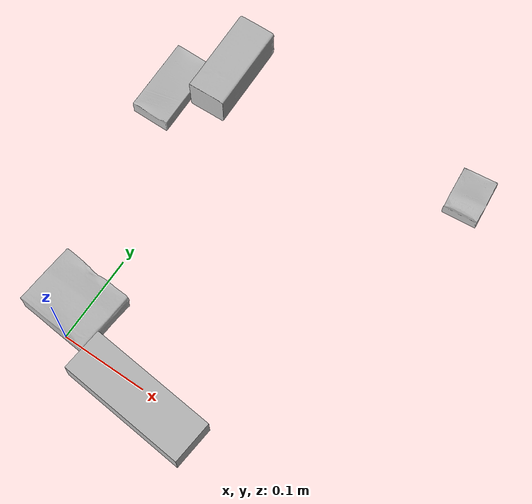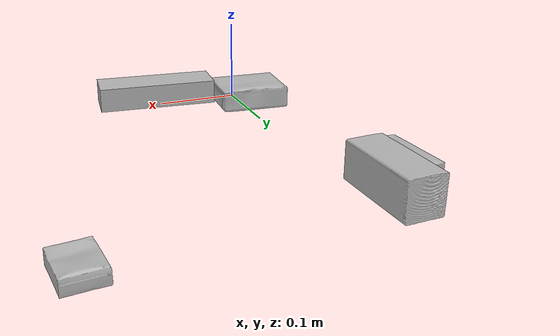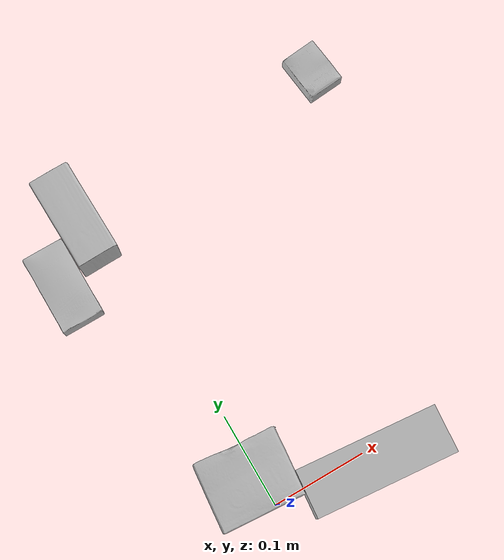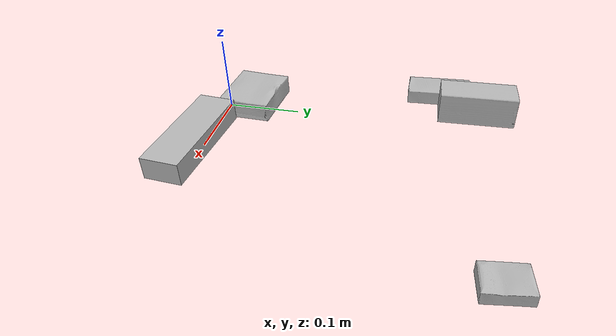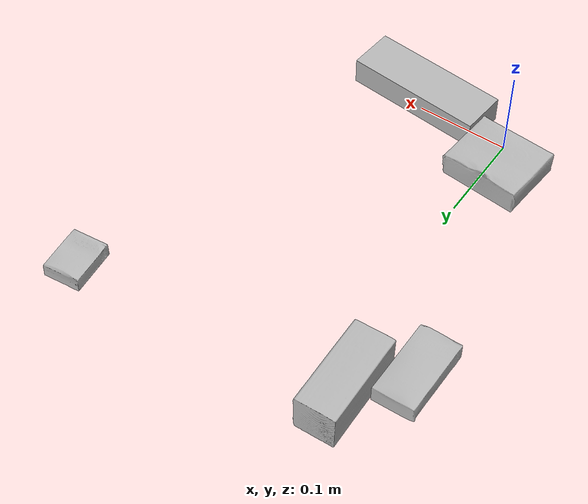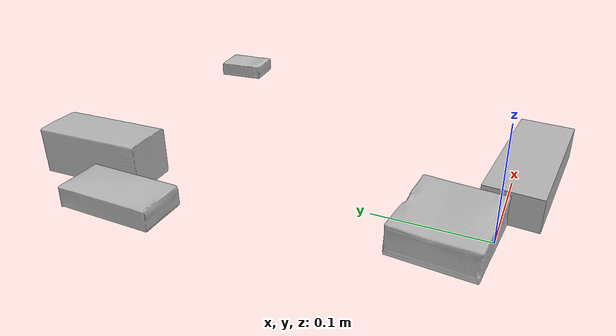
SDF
<sdf version="1.4">
  <world name="default">
    <light name="light1" type="point">
      <pose>0 0 1 0 0 0</pose>
      <diffuse>3 3 3 1</diffuse>
      <specular>3 3 3 1</specular>
    </light>
    <light name="light2" type="point">
      <pose>0 0.5 2 0 0 0</pose>
      <diffuse>1 1 1 1</diffuse>
      <specular>1 1 1 1</specular>
    </light>
    <light name="light3" type="point">
      <pose>0 0.5 2 0 0 0</pose>
      <diffuse>3 3 3 1</diffuse>
      <specular>3 3 3 1</specular>
    </light>
    <scene>
      <ambient>0.7 0.7 0.7</ambient>
    </scene>
    <model name="box1">
      <link name="link_box1">
        <collision name="default">
          <geometry>
            <mesh>
              <uri>model://sugar_box/collision_meshes/collision.obj</uri>
              <scale>0.5 0.5 0.5</scale>
            </mesh>
          </geometry>
          <surface>
            <friction>
              <ode>
                <mu>0.5</mu>
                <mu2>0.5</mu2>
              </ode>
            </friction>
          <contact>
        <ode>
            <max_vel>0</max_vel>
            <min_depth>0.0001</min_depth>
            <kp>1e8</kp>
        </ode>
    </contact></surface>
        </collision>
        <visual name="default">
          <geometry>
            <mesh>
              <uri>model://sugar_box/visual_meshes/visual.dae</uri>
              <scale>0.5 0.5 0.5</scale>
            </mesh>
          </geometry>
        </visual>
        <inertial>
          <mass>0.07249404489994049</mass>
          <pose>0.0005171863012947142 1.924554817378521e-05 -0.00018182402709499002 -0.00040462618385709627 0.0010506635220579009 0.0026153790218148127</pose>
          <inertia>
            <ixx>1.5100456e-05</ixx>
            <iyy>4.8807786e-05</iyy>
            <izz>5.842874e-05</izz>
            <ixy>0</ixy>
            <ixz>0</ixz>
            <iyz>0</iyz>
          </inertia>
        </inertial>
      </link>
      <pose>-0.07627225667238235 0.2942959666252136 0.011399303562939167 0.0007747446641368748 -0.02343288093650962 1.5776288282548938</pose>
    </model>
    <model name="box2">
      <link name="link_box2">
        <collision name="default">
          <geometry>
            <mesh>
              <uri>model://cracker_box/collision_meshes/collision.obj</uri>
              <scale>0.25 0.25 0.25</scale>
            </mesh>
          </geometry>
          <surface>
            <friction>
              <ode>
                <mu>0.5</mu>
                <mu2>0.5</mu2>
              </ode>
            </friction>
          <contact>
        <ode>
            <max_vel>0</max_vel>
            <min_depth>0.0001</min_depth>
            <kp>1e8</kp>
        </ode>
    </contact></surface>
        </collision>
        <visual name="default">
          <geometry>
            <mesh>
              <uri>model://cracker_box/visual_meshes/visual.dae</uri>
              <scale>0.25 0.25 0.25</scale>
            </mesh>
          </geometry>
        </visual>
        <inertial>
          <mass>0.019660919904708862</mass>
          <pose>0.00023660410079173744 6.358561222441494e-05 -0.0004257383698131889 -0.00031620756431779875 -0.011106489600602764 0.0025467940703044144</pose>
          <inertia>
            <ixx>3.125538e-06</ixx>
            <iyy>5.1608768e-06</iyy>
            <izz>7.365045e-06</izz>
            <ixy>0</ixy>
            <ixz>0</ixz>
            <iyz>0</iyz>
          </inertia>
        </inertial>
      </link>
      <pose>0.2653570771217346 0.3712581992149353 0.009096028283238411 -0.014050977097190692 -0.005016065200932604 1.668888221626317</pose>
    </model>
    <model name="box3">
      <link name="link_box3">
        <collision name="default">
          <geometry>
            <mesh>
              <uri>model://wood_block/collision_meshes/collision.obj</uri>
              <scale>0.5 0.5 0.5</scale>
            </mesh>
          </geometry>
          <surface>
            <friction>
              <ode>
                <mu>0.5</mu>
                <mu2>0.5</mu2>
              </ode>
            </friction>
          <contact>
        <ode>
            <max_vel>0</max_vel>
            <min_depth>0.0001</min_depth>
            <kp>1e8</kp>
        </ode>
    </contact></surface>
        </collision>
        <visual name="default">
          <geometry>
            <mesh>
              <uri>model://wood_block/visual_meshes/visual.dae</uri>
              <scale>0.5 0.5 0.5</scale>
            </mesh>
          </geometry>
        </visual>
        <inertial>
          <mass>0.22331082820892334</mass>
          <pose>-2.9066577553749084e-06 -0.000285404734313488 0.00013204292918089777 -0.0522110088927385 -0.005192696049127085 -0.006861379582621758</pose>
          <inertia>
            <ixx>7.470592e-05</ixx>
            <iyy>0.00023599603</iyy>
            <izz>0.0002351133</izz>
            <ixy>0</ixy>
            <ixz>0</ixz>
            <iyz>0</iyz>
          </inertia>
        </inertial>
      </link>
      <pose>-0.03194693475961685 0.34760114550590515 0.022629262879490852 -0.005208517727978071 0.005718778698872231 1.6013878052218253</pose>
    </model>
    <model name="box4">
      <link name="link_box4">
        <collision name="default">
          <geometry>
            <mesh>
              <uri>model://jenga/collision_meshes/collision.obj</uri>
              <scale>1.0 1.0 1.0</scale>
            </mesh>
          </geometry>
          <surface>
            <friction>
              <ode>
                <mu>0.5</mu>
                <mu2>0.5</mu2>
              </ode>
            </friction>
          <contact>
        <ode>
            <max_vel>0</max_vel>
            <min_depth>0.0001</min_depth>
            <kp>1e8</kp>
        </ode>
    </contact></surface>
        </collision>
        <visual name="default">
          <geometry>
            <mesh>
              <uri>model://jenga/visual_meshes/visual.dae</uri>
              <scale>1.0 1.0 1.0</scale>
            </mesh>
          </geometry>
        </visual>
        <inertial>
          <mass>0.1217927634716034</mass>
          <pose>-2.502855807051674e-07 -0.00010250010382151231 -4.0923401684267446e-05 0.0 -7.34215461761844e-07 0.0</pose>
          <inertia>
            <ixx>3.370301e-05</ixx>
            <iyy>0.00022837071</iyy>
            <izz>0.00024380515</izz>
            <ixy>0</ixy>
            <ixz>0</ixz>
            <iyz>0</iyz>
          </inertia>
        </inertial>
      </link>
      <pose>0.1045088917016983 -0.012790324166417122 0.014999997802078724 6.518539032975286e-11 2.457115029786355e-09 3.0485949666544276</pose>
    </model>
    <model name="box5">
      <link name="link_box5">
        <collision name="default">
          <geometry>
            <mesh>
              <uri>model://gelatin_box/collision_meshes/collision.obj</uri>
              <scale>1.0 1.0 1.0</scale>
            </mesh>
          </geometry>
          <surface>
            <friction>
              <ode>
                <mu>0.5</mu>
                <mu2>0.5</mu2>
              </ode>
            </friction>
          <contact>
        <ode>
            <max_vel>0</max_vel>
            <min_depth>0.0001</min_depth>
            <kp>1e8</kp>
        </ode>
    </contact></surface>
        </collision>
        <visual name="default">
          <geometry>
            <mesh>
              <uri>model://gelatin_box/visual_meshes/visual.dae</uri>
              <scale>1.0 1.0 1.0</scale>
            </mesh>
          </geometry>
        </visual>
        <inertial>
          <mass>0.09479870647192001</mass>
          <pose>0.0004319618456065655 0.00011156871914863586 -0.0003640321083366871 -0.0010503720924044775 -0.0047558191559584585 0.01644055760930107</pose>
          <inertia>
            <ixx>6.6920154e-05</ixx>
            <iyy>4.780071e-05</iyy>
            <izz>0.00010186739</izz>
            <ixy>0</ixy>
            <ixz>0</ixz>
            <iyz>0</iyz>
          </inertia>
        </inertial>
      </link>
      <pose>-0.010211829096078873 0.03384421393275261 0.015168312937021255 0.005597288474056429 -0.007304332154856015 1.476807042173703</pose>
    </model>
  <physics type="ode">
      <max_contacts>50</max_contacts>
      <ode>
        <solver>
          <type>quick</type>
          <iters>75</iters>
        </solver>
        <constraints>
          <contact_max_correcting_vel>0</contact_max_correcting_vel>
          <contact_surface_layer>0</contact_surface_layer>
        </constraints>
      </ode>
    </physics></world>
</sdf>
